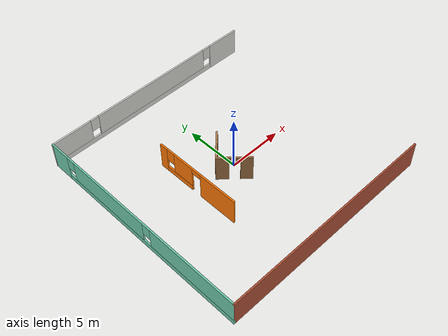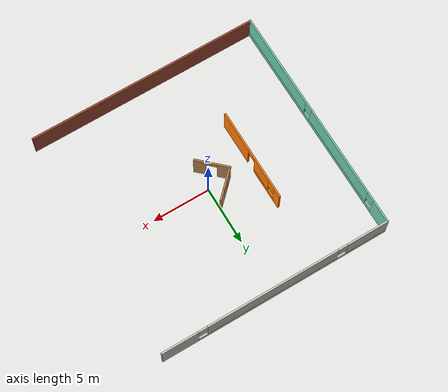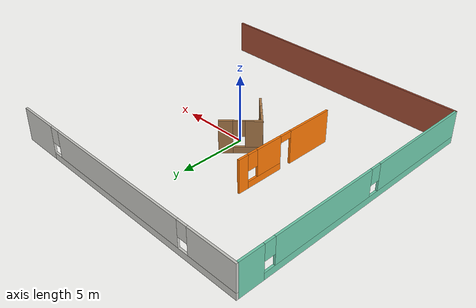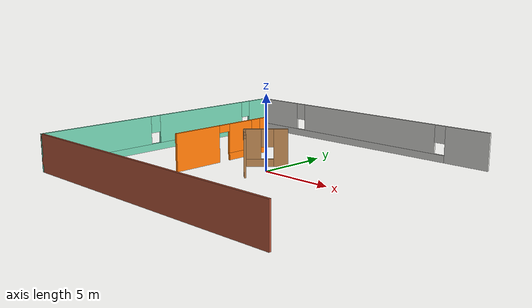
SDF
<sdf version="1.6">
 <model name="walls">
  <link name="Wall_44">
   <pose>0 -10 0 0 -0 0</pose>
   <visual name="Wall_44_Visual">
    <pose>0 0 1.25 0 -0 0</pose>
    <geometry><box><size>20.15 0.15 2.5</size></box></geometry>
    <material>
     <script><uri>file://media/materials/scripts/gazebo.material</uri><name>Gazebo/Bricks</name></script>
     <ambient>0.760784 0.662745 0.627451 1</ambient>
     <shader type="pixel"/>
     <diffuse>1 1 1 1</diffuse>
     <specular>0.2 0.2 0.2 1</specular>
     <emissive>0 0 0 1</emissive>
    </material>
    <meta><layer>0</layer></meta>
   </visual>
   <collision name="Wall_44_Collision">
    <pose>0 0 1.25 0 -0 0</pose>
    <geometry><box><size>20.15 0.15 2.5</size></box></geometry>
    <surface>
     <friction>
      <ode><mu>1</mu><mu2>1</mu2><fdir1>0 0 0</fdir1><slip1>0</slip1><slip2>0</slip2></ode>
      <torsional>
       <coefficient>1</coefficient>
       <patch_radius>0</patch_radius>
       <surface_radius>0</surface_radius>
       <use_patch_radius>1</use_patch_radius>
       <ode><slip>0</slip></ode>
      </torsional>
     </friction>
     <bounce><restitution_coefficient>0</restitution_coefficient><threshold>1e+06</threshold></bounce>
     <contact>
      <collide_without_contact>0</collide_without_contact>
      <collide_without_contact_bitmask>1</collide_without_contact_bitmask>
      <collide_bitmask>1</collide_bitmask>
      <ode>
       <soft_cfm>0</soft_cfm>
       <soft_erp>0.2</soft_erp>
       <kp>1e+13</kp>
       <kd>1</kd>
       <max_vel>0.01</max_vel>
       <min_depth>0</min_depth>
      </ode>
      <bullet>
       <split_impulse>1</split_impulse>
       <split_impulse_penetration_threshold>-0.01</split_impulse_penetration_threshold>
       <soft_cfm>0</soft_cfm>
       <soft_erp>0.2</soft_erp>
       <kp>1e+13</kp>
       <kd>1</kd>
      </bullet>
     </contact>
    </surface>
   </collision>
  </link>
  <link name="Wall_46">
   <pose>0 10 0 0 -0 3.14159</pose>
   <visual name="Wall_46_Visual_0">
    <pose>-8.48027 0 1.25 0 -0 0</pose>
    <geometry><box><size>3.18945 0.15 2.5</size></box></geometry>
    <material>
     <script><uri>file://media/materials/scripts/gazebo.material</uri><name>Gazebo/CeilingTiled</name></script>
     <ambient>0.333333 0 1 1</ambient>
     <shader type="pixel"/>
     <diffuse>1 1 1 1</diffuse>
     <specular>0 0 0 1</specular>
     <emissive>0 0 0 1</emissive>
    </material>
    <meta><layer>0</layer></meta>
   </visual>
   <visual name="Wall_46_Visual_1">
    <pose>1.59473 0 0.25 0 -0 0</pose>
    <geometry><box><size>16.9605 0.15 0.5</size></box></geometry>
    <material>
     <script><uri>file://media/materials/scripts/gazebo.material</uri><name>Gazebo/CeilingTiled</name></script>
     <ambient>0.333333 0 1 1</ambient>
     <shader type="pixel"/>
     <diffuse>1 1 1 1</diffuse>
     <specular>0 0 0 1</specular>
     <emissive>0 0 0 1</emissive>
    </material>
    <meta><layer>0</layer></meta>
   </visual>
   <visual name="Wall_46_Visual_2">
    <pose>-0.261101 0 1.5 0 -0 0</pose>
    <geometry><box><size>11.6489 0.15 2</size></box></geometry>
    <material>
     <script><uri>file://media/materials/scripts/gazebo.material</uri><name>Gazebo/CeilingTiled</name></script>
     <ambient>0.333333 0 1 1</ambient>
     <shader type="pixel"/>
     <diffuse>1 1 1 1</diffuse>
     <specular>0 0 0 1</specular>
     <emissive>0 0 0 1</emissive>
    </material>
    <meta><layer>0</layer></meta>
   </visual>
   <visual name="Wall_46_Visual_3">
    <pose>8.21917 0 1.5 0 -0 0</pose>
    <geometry><box><size>3.71165 0.15 2</size></box></geometry>
    <material>
     <script><uri>file://media/materials/scripts/gazebo.material</uri><name>Gazebo/CeilingTiled</name></script>
     <ambient>0.333333 0 1 1</ambient>
     <shader type="pixel"/>
     <diffuse>1 1 1 1</diffuse>
     <specular>0 0 0 1</specular>
     <emissive>0 0 0 1</emissive>
    </material>
    <meta><layer>0</layer></meta>
   </visual>
   <visual name="Wall_46_Visual_4">
    <pose>-6.48555 0 1.9 0 -0 0</pose>
    <geometry><box><size>0.8 0.15 1.2</size></box></geometry>
    <material>
     <script><uri>file://media/materials/scripts/gazebo.material</uri><name>Gazebo/CeilingTiled</name></script>
     <ambient>0.333333 0 1 1</ambient>
     <shader type="pixel"/>
     <diffuse>1 1 1 1</diffuse>
     <specular>0 0 0 1</specular>
     <emissive>0 0 0 1</emissive>
    </material>
    <meta><layer>0</layer></meta>
   </visual>
   <visual name="Wall_46_Visual_5">
    <pose>5.96335 0 1.9 0 -0 0</pose>
    <geometry><box><size>0.8 0.15 1.2</size></box></geometry>
    <material>
     <script><uri>file://media/materials/scripts/gazebo.material</uri><name>Gazebo/CeilingTiled</name></script>
     <ambient>0.333333 0 1 1</ambient>
     <shader type="pixel"/>
     <diffuse>1 1 1 1</diffuse>
     <specular>0 0 0 1</specular>
     <emissive>0 0 0 1</emissive>
    </material>
    <meta><layer>0</layer></meta>
   </visual>
   <collision name="Wall_46_Collision_0">
    <pose>-8.48027 0 1.25 0 -0 0</pose>
    <geometry><box><size>3.18945 0.15 2.5</size></box></geometry>
    <surface>
     <friction>
      <ode><mu>1</mu><mu2>1</mu2><fdir1>0 0 0</fdir1><slip1>0</slip1><slip2>0</slip2></ode>
      <torsional>
       <coefficient>1</coefficient>
       <patch_radius>0</patch_radius>
       <surface_radius>0</surface_radius>
       <use_patch_radius>1</use_patch_radius>
       <ode><slip>0</slip></ode>
      </torsional>
     </friction>
     <bounce><restitution_coefficient>0</restitution_coefficient><threshold>1e+06</threshold></bounce>
     <contact>
      <collide_without_contact>0</collide_without_contact>
      <collide_without_contact_bitmask>1</collide_without_contact_bitmask>
      <collide_bitmask>1</collide_bitmask>
      <ode>
       <soft_cfm>0</soft_cfm>
       <soft_erp>0.2</soft_erp>
       <kp>1e+13</kp>
       <kd>1</kd>
       <max_vel>0.01</max_vel>
       <min_depth>0</min_depth>
      </ode>
      <bullet>
       <split_impulse>1</split_impulse>
       <split_impulse_penetration_threshold>-0.01</split_impulse_penetration_threshold>
       <soft_cfm>0</soft_cfm>
       <soft_erp>0.2</soft_erp>
       <kp>1e+13</kp>
       <kd>1</kd>
      </bullet>
     </contact>
    </surface>
   </collision>
   <collision name="Wall_46_Collision_1">
    <pose>1.59473 0 0.25 0 -0 0</pose>
    <geometry><box><size>16.9605 0.15 0.5</size></box></geometry>
    <surface>
     <friction>
      <ode><mu>1</mu><mu2>1</mu2><fdir1>0 0 0</fdir1><slip1>0</slip1><slip2>0</slip2></ode>
      <torsional>
       <coefficient>1</coefficient>
       <patch_radius>0</patch_radius>
       <surface_radius>0</surface_radius>
       <use_patch_radius>1</use_patch_radius>
       <ode><slip>0</slip></ode>
      </torsional>
     </friction>
     <bounce><restitution_coefficient>0</restitution_coefficient><threshold>1e+06</threshold></bounce>
     <contact>
      <collide_without_contact>0</collide_without_contact>
      <collide_without_contact_bitmask>1</collide_without_contact_bitmask>
      <collide_bitmask>1</collide_bitmask>
      <ode>
       <soft_cfm>0</soft_cfm>
       <soft_erp>0.2</soft_erp>
       <kp>1e+13</kp>
       <kd>1</kd>
       <max_vel>0.01</max_vel>
       <min_depth>0</min_depth>
      </ode>
      <bullet>
       <split_impulse>1</split_impulse>
       <split_impulse_penetration_threshold>-0.01</split_impulse_penetration_threshold>
       <soft_cfm>0</soft_cfm>
       <soft_erp>0.2</soft_erp>
       <kp>1e+13</kp>
       <kd>1</kd>
      </bullet>
     </contact>
    </surface>
   </collision>
   <collision name="Wall_46_Collision_2">
    <pose>-0.261101 0 1.5 0 -0 0</pose>
    <geometry><box><size>11.6489 0.15 2</size></box></geometry>
    <surface>
     <friction>
      <ode><mu>1</mu><mu2>1</mu2><fdir1>0 0 0</fdir1><slip1>0</slip1><slip2>0</slip2></ode>
      <torsional>
       <coefficient>1</coefficient>
       <patch_radius>0</patch_radius>
       <surface_radius>0</surface_radius>
       <use_patch_radius>1</use_patch_radius>
       <ode><slip>0</slip></ode>
      </torsional>
     </friction>
     <bounce><restitution_coefficient>0</restitution_coefficient><threshold>1e+06</threshold></bounce>
     <contact>
      <collide_without_contact>0</collide_without_contact>
      <collide_without_contact_bitmask>1</collide_without_contact_bitmask>
      <collide_bitmask>1</collide_bitmask>
      <ode>
       <soft_cfm>0</soft_cfm>
       <soft_erp>0.2</soft_erp>
       <kp>1e+13</kp>
       <kd>1</kd>
       <max_vel>0.01</max_vel>
       <min_depth>0</min_depth>
      </ode>
      <bullet>
       <split_impulse>1</split_impulse>
       <split_impulse_penetration_threshold>-0.01</split_impulse_penetration_threshold>
       <soft_cfm>0</soft_cfm>
       <soft_erp>0.2</soft_erp>
       <kp>1e+13</kp>
       <kd>1</kd>
      </bullet>
     </contact>
    </surface>
   </collision>
   <collision name="Wall_46_Collision_3">
    <pose>8.21917 0 1.5 0 -0 0</pose>
    <geometry><box><size>3.71165 0.15 2</size></box></geometry>
    <surface>
     <friction>
      <ode><mu>1</mu><mu2>1</mu2><fdir1>0 0 0</fdir1><slip1>0</slip1><slip2>0</slip2></ode>
      <torsional>
       <coefficient>1</coefficient>
       <patch_radius>0</patch_radius>
       <surface_radius>0</surface_radius>
       <use_patch_radius>1</use_patch_radius>
       <ode><slip>0</slip></ode>
      </torsional>
     </friction>
     <bounce><restitution_coefficient>0</restitution_coefficient><threshold>1e+06</threshold></bounce>
     <contact>
      <collide_without_contact>0</collide_without_contact>
      <collide_without_contact_bitmask>1</collide_without_contact_bitmask>
      <collide_bitmask>1</collide_bitmask>
      <ode>
       <soft_cfm>0</soft_cfm>
       <soft_erp>0.2</soft_erp>
       <kp>1e+13</kp>
       <kd>1</kd>
       <max_vel>0.01</max_vel>
       <min_depth>0</min_depth>
      </ode>
      <bullet>
       <split_impulse>1</split_impulse>
       <split_impulse_penetration_threshold>-0.01</split_impulse_penetration_threshold>
       <soft_cfm>0</soft_cfm>
       <soft_erp>0.2</soft_erp>
       <kp>1e+13</kp>
       <kd>1</kd>
      </bullet>
     </contact>
    </surface>
   </collision>
   <collision name="Wall_46_Collision_4">
    <pose>-6.48555 0 1.9 0 -0 0</pose>
    <geometry><box><size>0.8 0.15 1.2</size></box></geometry>
    <surface>
     <friction>
      <ode><mu>1</mu><mu2>1</mu2><fdir1>0 0 0</fdir1><slip1>0</slip1><slip2>0</slip2></ode>
      <torsional>
       <coefficient>1</coefficient>
       <patch_radius>0</patch_radius>
       <surface_radius>0</surface_radius>
       <use_patch_radius>1</use_patch_radius>
       <ode><slip>0</slip></ode>
      </torsional>
     </friction>
     <bounce><restitution_coefficient>0</restitution_coefficient><threshold>1e+06</threshold></bounce>
     <contact>
      <collide_without_contact>0</collide_without_contact>
      <collide_without_contact_bitmask>1</collide_without_contact_bitmask>
      <collide_bitmask>1</collide_bitmask>
      <ode>
       <soft_cfm>0</soft_cfm>
       <soft_erp>0.2</soft_erp>
       <kp>1e+13</kp>
       <kd>1</kd>
       <max_vel>0.01</max_vel>
       <min_depth>0</min_depth>
      </ode>
      <bullet>
       <split_impulse>1</split_impulse>
       <split_impulse_penetration_threshold>-0.01</split_impulse_penetration_threshold>
       <soft_cfm>0</soft_cfm>
       <soft_erp>0.2</soft_erp>
       <kp>1e+13</kp>
       <kd>1</kd>
      </bullet>
     </contact>
    </surface>
   </collision>
   <collision name="Wall_46_Collision_5">
    <pose>5.96335 0 1.9 0 -0 0</pose>
    <geometry><box><size>0.8 0.15 1.2</size></box></geometry>
    <surface>
     <friction>
      <ode><mu>1</mu><mu2>1</mu2><fdir1>0 0 0</fdir1><slip1>0</slip1><slip2>0</slip2></ode>
      <torsional>
       <coefficient>1</coefficient>
       <patch_radius>0</patch_radius>
       <surface_radius>0</surface_radius>
       <use_patch_radius>1</use_patch_radius>
       <ode><slip>0</slip></ode>
      </torsional>
     </friction>
     <bounce><restitution_coefficient>0</restitution_coefficient><threshold>1e+06</threshold></bounce>
     <contact>
      <collide_without_contact>0</collide_without_contact>
      <collide_without_contact_bitmask>1</collide_without_contact_bitmask>
      <collide_bitmask>1</collide_bitmask>
      <ode>
       <soft_cfm>0</soft_cfm>
       <soft_erp>0.2</soft_erp>
       <kp>1e+13</kp>
       <kd>1</kd>
       <max_vel>0.01</max_vel>
       <min_depth>0</min_depth>
      </ode>
      <bullet>
       <split_impulse>1</split_impulse>
       <split_impulse_penetration_threshold>-0.01</split_impulse_penetration_threshold>
       <soft_cfm>0</soft_cfm>
       <soft_erp>0.2</soft_erp>
       <kp>1e+13</kp>
       <kd>1</kd>
      </bullet>
     </contact>
    </surface>
   </collision>
  </link>
  <link name="Wall_47">
   <pose>-10 0 0 0 0 -1.5708</pose>
   <visual name="Wall_47_Visual_0">
    <pose>-9.08483 0 1.25 0 -0 0</pose>
    <geometry><box><size>1.98033 0.15 2.5</size></box></geometry>
    <material>
     <script><uri>file://media/materials/scripts/gazebo.material</uri><name>Gazebo/Grey</name></script>
     <ambient>0.435294 0.796078 0.67451 1</ambient>
     <shader type="pixel"/>
     <diffuse>0.7 0.7 0.7 1</diffuse>
     <specular>0.01 0.01 0.01 1</specular>
     <emissive>0 0 0 1</emissive>
    </material>
    <meta><layer>0</layer></meta>
   </visual>
   <visual name="Wall_47_Visual_1">
    <pose>0.990168 0 0.25 0 -0 0</pose>
    <geometry><box><size>18.1697 0.15 0.5</size></box></geometry>
    <material>
     <script><uri>file://media/materials/scripts/gazebo.material</uri><name>Gazebo/Grey</name></script>
     <ambient>0.435294 0.796078 0.67451 1</ambient>
     <shader type="pixel"/>
     <diffuse>0.7 0.7 0.7 1</diffuse>
     <specular>0.01 0.01 0.01 1</specular>
     <emissive>0 0 0 1</emissive>
    </material>
    <meta><layer>0</layer></meta>
   </visual>
   <visual name="Wall_47_Visual_2">
    <pose>-3.25243 0 1.5 0 -0 0</pose>
    <geometry><box><size>8.08447 0.15 2</size></box></geometry>
    <material>
     <script><uri>file://media/materials/scripts/gazebo.material</uri><name>Gazebo/Grey</name></script>
     <ambient>0.435294 0.796078 0.67451 1</ambient>
     <shader type="pixel"/>
     <diffuse>0.7 0.7 0.7 1</diffuse>
     <specular>0.01 0.01 0.01 1</specular>
     <emissive>0 0 0 1</emissive>
    </material>
    <meta><layer>0</layer></meta>
   </visual>
   <visual name="Wall_47_Visual_3">
    <pose>5.8324 0 1.5 0 -0 0</pose>
    <geometry><box><size>8.4852 0.15 2</size></box></geometry>
    <material>
     <script><uri>file://media/materials/scripts/gazebo.material</uri><name>Gazebo/Grey</name></script>
     <ambient>0.435294 0.796078 0.67451 1</ambient>
     <shader type="pixel"/>
     <diffuse>0.7 0.7 0.7 1</diffuse>
     <specular>0.01 0.01 0.01 1</specular>
     <emissive>0 0 0 1</emissive>
    </material>
    <meta><layer>0</layer></meta>
   </visual>
   <visual name="Wall_47_Visual_4">
    <pose>-7.69466 0 1.9 0 -0 0</pose>
    <geometry><box><size>0.8 0.15 1.2</size></box></geometry>
    <material>
     <script><uri>file://media/materials/scripts/gazebo.material</uri><name>Gazebo/Grey</name></script>
     <ambient>0.435294 0.796078 0.67451 1</ambient>
     <shader type="pixel"/>
     <diffuse>0.7 0.7 0.7 1</diffuse>
     <specular>0.01 0.01 0.01 1</specular>
     <emissive>0 0 0 1</emissive>
    </material>
    <meta><layer>0</layer></meta>
   </visual>
   <visual name="Wall_47_Visual_5">
    <pose>1.1898 0 1.9 0 -0 0</pose>
    <geometry><box><size>0.8 0.15 1.2</size></box></geometry>
    <material>
     <script><uri>file://media/materials/scripts/gazebo.material</uri><name>Gazebo/Grey</name></script>
     <ambient>0.435294 0.796078 0.67451 1</ambient>
     <shader type="pixel"/>
     <diffuse>0.7 0.7 0.7 1</diffuse>
     <specular>0.01 0.01 0.01 1</specular>
     <emissive>0 0 0 1</emissive>
    </material>
    <meta><layer>0</layer></meta>
   </visual>
   <collision name="Wall_47_Collision_0">
    <pose>-9.08483 0 1.25 0 -0 0</pose>
    <geometry><box><size>1.98033 0.15 2.5</size></box></geometry>
    <surface>
     <friction>
      <ode><mu>1</mu><mu2>1</mu2><fdir1>0 0 0</fdir1><slip1>0</slip1><slip2>0</slip2></ode>
      <torsional>
       <coefficient>1</coefficient>
       <patch_radius>0</patch_radius>
       <surface_radius>0</surface_radius>
       <use_patch_radius>1</use_patch_radius>
       <ode><slip>0</slip></ode>
      </torsional>
     </friction>
     <bounce><restitution_coefficient>0</restitution_coefficient><threshold>1e+06</threshold></bounce>
     <contact>
      <collide_without_contact>0</collide_without_contact>
      <collide_without_contact_bitmask>1</collide_without_contact_bitmask>
      <collide_bitmask>1</collide_bitmask>
      <ode>
       <soft_cfm>0</soft_cfm>
       <soft_erp>0.2</soft_erp>
       <kp>1e+13</kp>
       <kd>1</kd>
       <max_vel>0.01</max_vel>
       <min_depth>0</min_depth>
      </ode>
      <bullet>
       <split_impulse>1</split_impulse>
       <split_impulse_penetration_threshold>-0.01</split_impulse_penetration_threshold>
       <soft_cfm>0</soft_cfm>
       <soft_erp>0.2</soft_erp>
       <kp>1e+13</kp>
       <kd>1</kd>
      </bullet>
     </contact>
    </surface>
   </collision>
   <collision name="Wall_47_Collision_1">
    <pose>0.990168 0 0.25 0 -0 0</pose>
    <geometry><box><size>18.1697 0.15 0.5</size></box></geometry>
    <surface>
     <friction>
      <ode><mu>1</mu><mu2>1</mu2><fdir1>0 0 0</fdir1><slip1>0</slip1><slip2>0</slip2></ode>
      <torsional>
       <coefficient>1</coefficient>
       <patch_radius>0</patch_radius>
       <surface_radius>0</surface_radius>
       <use_patch_radius>1</use_patch_radius>
       <ode><slip>0</slip></ode>
      </torsional>
     </friction>
     <bounce><restitution_coefficient>0</restitution_coefficient><threshold>1e+06</threshold></bounce>
     <contact>
      <collide_without_contact>0</collide_without_contact>
      <collide_without_contact_bitmask>1</collide_without_contact_bitmask>
      <collide_bitmask>1</collide_bitmask>
      <ode>
       <soft_cfm>0</soft_cfm>
       <soft_erp>0.2</soft_erp>
       <kp>1e+13</kp>
       <kd>1</kd>
       <max_vel>0.01</max_vel>
       <min_depth>0</min_depth>
      </ode>
      <bullet>
       <split_impulse>1</split_impulse>
       <split_impulse_penetration_threshold>-0.01</split_impulse_penetration_threshold>
       <soft_cfm>0</soft_cfm>
       <soft_erp>0.2</soft_erp>
       <kp>1e+13</kp>
       <kd>1</kd>
      </bullet>
     </contact>
    </surface>
   </collision>
   <collision name="Wall_47_Collision_2">
    <pose>-3.25243 0 1.5 0 -0 0</pose>
    <geometry><box><size>8.08447 0.15 2</size></box></geometry>
    <surface>
     <friction>
      <ode><mu>1</mu><mu2>1</mu2><fdir1>0 0 0</fdir1><slip1>0</slip1><slip2>0</slip2></ode>
      <torsional>
       <coefficient>1</coefficient>
       <patch_radius>0</patch_radius>
       <surface_radius>0</surface_radius>
       <use_patch_radius>1</use_patch_radius>
       <ode><slip>0</slip></ode>
      </torsional>
     </friction>
     <bounce><restitution_coefficient>0</restitution_coefficient><threshold>1e+06</threshold></bounce>
     <contact>
      <collide_without_contact>0</collide_without_contact>
      <collide_without_contact_bitmask>1</collide_without_contact_bitmask>
      <collide_bitmask>1</collide_bitmask>
      <ode>
       <soft_cfm>0</soft_cfm>
       <soft_erp>0.2</soft_erp>
       <kp>1e+13</kp>
       <kd>1</kd>
       <max_vel>0.01</max_vel>
       <min_depth>0</min_depth>
      </ode>
      <bullet>
       <split_impulse>1</split_impulse>
       <split_impulse_penetration_threshold>-0.01</split_impulse_penetration_threshold>
       <soft_cfm>0</soft_cfm>
       <soft_erp>0.2</soft_erp>
       <kp>1e+13</kp>
       <kd>1</kd>
      </bullet>
     </contact>
    </surface>
   </collision>
   <collision name="Wall_47_Collision_3">
    <pose>5.8324 0 1.5 0 -0 0</pose>
    <geometry><box><size>8.4852 0.15 2</size></box></geometry>
    <surface>
     <friction>
      <ode><mu>1</mu><mu2>1</mu2><fdir1>0 0 0</fdir1><slip1>0</slip1><slip2>0</slip2></ode>
      <torsional>
       <coefficient>1</coefficient>
       <patch_radius>0</patch_radius>
       <surface_radius>0</surface_radius>
       <use_patch_radius>1</use_patch_radius>
       <ode><slip>0</slip></ode>
      </torsional>
     </friction>
     <bounce><restitution_coefficient>0</restitution_coefficient><threshold>1e+06</threshold></bounce>
     <contact>
      <collide_without_contact>0</collide_without_contact>
      <collide_without_contact_bitmask>1</collide_without_contact_bitmask>
      <collide_bitmask>1</collide_bitmask>
      <ode>
       <soft_cfm>0</soft_cfm>
       <soft_erp>0.2</soft_erp>
       <kp>1e+13</kp>
       <kd>1</kd>
       <max_vel>0.01</max_vel>
       <min_depth>0</min_depth>
      </ode>
      <bullet>
       <split_impulse>1</split_impulse>
       <split_impulse_penetration_threshold>-0.01</split_impulse_penetration_threshold>
       <soft_cfm>0</soft_cfm>
       <soft_erp>0.2</soft_erp>
       <kp>1e+13</kp>
       <kd>1</kd>
      </bullet>
     </contact>
    </surface>
   </collision>
   <collision name="Wall_47_Collision_4">
    <pose>-7.69466 0 1.9 0 -0 0</pose>
    <geometry><box><size>0.8 0.15 1.2</size></box></geometry>
    <surface>
     <friction>
      <ode><mu>1</mu><mu2>1</mu2><fdir1>0 0 0</fdir1><slip1>0</slip1><slip2>0</slip2></ode>
      <torsional>
       <coefficient>1</coefficient>
       <patch_radius>0</patch_radius>
       <surface_radius>0</surface_radius>
       <use_patch_radius>1</use_patch_radius>
       <ode><slip>0</slip></ode>
      </torsional>
     </friction>
     <bounce><restitution_coefficient>0</restitution_coefficient><threshold>1e+06</threshold></bounce>
     <contact>
      <collide_without_contact>0</collide_without_contact>
      <collide_without_contact_bitmask>1</collide_without_contact_bitmask>
      <collide_bitmask>1</collide_bitmask>
      <ode>
       <soft_cfm>0</soft_cfm>
       <soft_erp>0.2</soft_erp>
       <kp>1e+13</kp>
       <kd>1</kd>
       <max_vel>0.01</max_vel>
       <min_depth>0</min_depth>
      </ode>
      <bullet>
       <split_impulse>1</split_impulse>
       <split_impulse_penetration_threshold>-0.01</split_impulse_penetration_threshold>
       <soft_cfm>0</soft_cfm>
       <soft_erp>0.2</soft_erp>
       <kp>1e+13</kp>
       <kd>1</kd>
      </bullet>
     </contact>
    </surface>
   </collision>
   <collision name="Wall_47_Collision_5">
    <pose>1.1898 0 1.9 0 -0 0</pose>
    <geometry><box><size>0.8 0.15 1.2</size></box></geometry>
    <surface>
     <friction>
      <ode><mu>1</mu><mu2>1</mu2><fdir1>0 0 0</fdir1><slip1>0</slip1><slip2>0</slip2></ode>
      <torsional>
       <coefficient>1</coefficient>
       <patch_radius>0</patch_radius>
       <surface_radius>0</surface_radius>
       <use_patch_radius>1</use_patch_radius>
       <ode><slip>0</slip></ode>
      </torsional>
     </friction>
     <bounce><restitution_coefficient>0</restitution_coefficient><threshold>1e+06</threshold></bounce>
     <contact>
      <collide_without_contact>0</collide_without_contact>
      <collide_without_contact_bitmask>1</collide_without_contact_bitmask>
      <collide_bitmask>1</collide_bitmask>
      <ode>
       <soft_cfm>0</soft_cfm>
       <soft_erp>0.2</soft_erp>
       <kp>1e+13</kp>
       <kd>1</kd>
       <max_vel>0.01</max_vel>
       <min_depth>0</min_depth>
      </ode>
      <bullet>
       <split_impulse>1</split_impulse>
       <split_impulse_penetration_threshold>-0.01</split_impulse_penetration_threshold>
       <soft_cfm>0</soft_cfm>
       <soft_erp>0.2</soft_erp>
       <kp>1e+13</kp>
       <kd>1</kd>
      </bullet>
     </contact>
    </surface>
   </collision>
  </link>
  <link name="Wall_49">
   <pose>-4 0 0 0 0 -1.5708</pose>
   <visual name="Wall_49_Visual_0">
    <pose>-3.69081 0 1.25 0 -0 0</pose>
    <geometry><box><size>0.768371 0.15 2.5</size></box></geometry>
    <material>
     <script><uri>file://media/materials/scripts/gazebo.material</uri><name>Gazebo/Grey</name></script>
     <ambient>0.996078 0.47451 0.0196078 1</ambient>
     <shader type="pixel"/>
     <diffuse>0.7 0.7 0.7 1</diffuse>
     <specular>0.01 0.01 0.01 1</specular>
     <emissive>0 0 0 1</emissive>
    </material>
    <meta><layer>0</layer></meta>
   </visual>
   <visual name="Wall_49_Visual_1">
    <pose>2.2625 0 1.25 0 -0 0</pose>
    <geometry><box><size>3.625 0.15 2.5</size></box></geometry>
    <material>
     <script><uri>file://media/materials/scripts/gazebo.material</uri><name>Gazebo/Grey</name></script>
     <ambient>0.996078 0.47451 0.0196078 1</ambient>
     <shader type="pixel"/>
     <diffuse>0.7 0.7 0.7 1</diffuse>
     <specular>0.01 0.01 0.01 1</specular>
     <emissive>0 0 0 1</emissive>
    </material>
    <meta><layer>0</layer></meta>
   </visual>
   <visual name="Wall_49_Visual_2">
    <pose>-1.87831 0 0.25 0 -0 0</pose>
    <geometry><box><size>2.85663 0.15 0.5</size></box></geometry>
    <material>
     <script><uri>file://media/materials/scripts/gazebo.material</uri><name>Gazebo/Grey</name></script>
     <ambient>0.996078 0.47451 0.0196078 1</ambient>
     <shader type="pixel"/>
     <diffuse>0.7 0.7 0.7 1</diffuse>
     <specular>0.01 0.01 0.01 1</specular>
     <emissive>0 0 0 1</emissive>
    </material>
    <meta><layer>0</layer></meta>
   </visual>
   <visual name="Wall_49_Visual_3">
    <pose>-1.47831 0 1.5 0 -0 0</pose>
    <geometry><box><size>2.05663 0.15 2</size></box></geometry>
    <material>
     <script><uri>file://media/materials/scripts/gazebo.material</uri><name>Gazebo/Grey</name></script>
     <ambient>0.996078 0.47451 0.0196078 1</ambient>
     <shader type="pixel"/>
     <diffuse>0.7 0.7 0.7 1</diffuse>
     <specular>0.01 0.01 0.01 1</specular>
     <emissive>0 0 0 1</emissive>
    </material>
    <meta><layer>0</layer></meta>
   </visual>
   <visual name="Wall_49_Visual_4">
    <pose>-2.90663 0 1.9 0 -0 0</pose>
    <geometry><box><size>0.8 0.15 1.2</size></box></geometry>
    <material>
     <script><uri>file://media/materials/scripts/gazebo.material</uri><name>Gazebo/Grey</name></script>
     <ambient>0.996078 0.47451 0.0196078 1</ambient>
     <shader type="pixel"/>
     <diffuse>0.7 0.7 0.7 1</diffuse>
     <specular>0.01 0.01 0.01 1</specular>
     <emissive>0 0 0 1</emissive>
    </material>
    <meta><layer>0</layer></meta>
   </visual>
   <visual name="Wall_49_Visual_5">
    <pose>0 0 2.25 0 -0 0</pose>
    <geometry><box><size>0.9 0.15 0.5</size></box></geometry>
    <material>
     <script><uri>file://media/materials/scripts/gazebo.material</uri><name>Gazebo/Grey</name></script>
     <ambient>0.996078 0.47451 0.0196078 1</ambient>
     <shader type="pixel"/>
     <diffuse>0.7 0.7 0.7 1</diffuse>
     <specular>0.01 0.01 0.01 1</specular>
     <emissive>0 0 0 1</emissive>
    </material>
    <meta><layer>0</layer></meta>
   </visual>
   <collision name="Wall_49_Collision_0">
    <pose>-3.69081 0 1.25 0 -0 0</pose>
    <geometry><box><size>0.768371 0.15 2.5</size></box></geometry>
    <surface>
     <friction>
      <ode><mu>1</mu><mu2>1</mu2><fdir1>0 0 0</fdir1><slip1>0</slip1><slip2>0</slip2></ode>
      <torsional>
       <coefficient>1</coefficient>
       <patch_radius>0</patch_radius>
       <surface_radius>0</surface_radius>
       <use_patch_radius>1</use_patch_radius>
       <ode><slip>0</slip></ode>
      </torsional>
     </friction>
     <bounce><restitution_coefficient>0</restitution_coefficient><threshold>1e+06</threshold></bounce>
     <contact>
      <collide_without_contact>0</collide_without_contact>
      <collide_without_contact_bitmask>1</collide_without_contact_bitmask>
      <collide_bitmask>1</collide_bitmask>
      <ode>
       <soft_cfm>0</soft_cfm>
       <soft_erp>0.2</soft_erp>
       <kp>1e+13</kp>
       <kd>1</kd>
       <max_vel>0.01</max_vel>
       <min_depth>0</min_depth>
      </ode>
      <bullet>
       <split_impulse>1</split_impulse>
       <split_impulse_penetration_threshold>-0.01</split_impulse_penetration_threshold>
       <soft_cfm>0</soft_cfm>
       <soft_erp>0.2</soft_erp>
       <kp>1e+13</kp>
       <kd>1</kd>
      </bullet>
     </contact>
    </surface>
   </collision>
   <collision name="Wall_49_Collision_1">
    <pose>2.2625 0 1.25 0 -0 0</pose>
    <geometry><box><size>3.625 0.15 2.5</size></box></geometry>
    <surface>
     <friction>
      <ode><mu>1</mu><mu2>1</mu2><fdir1>0 0 0</fdir1><slip1>0</slip1><slip2>0</slip2></ode>
      <torsional>
       <coefficient>1</coefficient>
       <patch_radius>0</patch_radius>
       <surface_radius>0</surface_radius>
       <use_patch_radius>1</use_patch_radius>
       <ode><slip>0</slip></ode>
      </torsional>
     </friction>
     <bounce><restitution_coefficient>0</restitution_coefficient><threshold>1e+06</threshold></bounce>
     <contact>
      <collide_without_contact>0</collide_without_contact>
      <collide_without_contact_bitmask>1</collide_without_contact_bitmask>
      <collide_bitmask>1</collide_bitmask>
      <ode>
       <soft_cfm>0</soft_cfm>
       <soft_erp>0.2</soft_erp>
       <kp>1e+13</kp>
       <kd>1</kd>
       <max_vel>0.01</max_vel>
       <min_depth>0</min_depth>
      </ode>
      <bullet>
       <split_impulse>1</split_impulse>
       <split_impulse_penetration_threshold>-0.01</split_impulse_penetration_threshold>
       <soft_cfm>0</soft_cfm>
       <soft_erp>0.2</soft_erp>
       <kp>1e+13</kp>
       <kd>1</kd>
      </bullet>
     </contact>
    </surface>
   </collision>
   <collision name="Wall_49_Collision_2">
    <pose>-1.87831 0 0.25 0 -0 0</pose>
    <geometry><box><size>2.85663 0.15 0.5</size></box></geometry>
    <surface>
     <friction>
      <ode><mu>1</mu><mu2>1</mu2><fdir1>0 0 0</fdir1><slip1>0</slip1><slip2>0</slip2></ode>
      <torsional>
       <coefficient>1</coefficient>
       <patch_radius>0</patch_radius>
       <surface_radius>0</surface_radius>
       <use_patch_radius>1</use_patch_radius>
       <ode><slip>0</slip></ode>
      </torsional>
     </friction>
     <bounce><restitution_coefficient>0</restitution_coefficient><threshold>1e+06</threshold></bounce>
     <contact>
      <collide_without_contact>0</collide_without_contact>
      <collide_without_contact_bitmask>1</collide_without_contact_bitmask>
      <collide_bitmask>1</collide_bitmask>
      <ode>
       <soft_cfm>0</soft_cfm>
       <soft_erp>0.2</soft_erp>
       <kp>1e+13</kp>
       <kd>1</kd>
       <max_vel>0.01</max_vel>
       <min_depth>0</min_depth>
      </ode>
      <bullet>
       <split_impulse>1</split_impulse>
       <split_impulse_penetration_threshold>-0.01</split_impulse_penetration_threshold>
       <soft_cfm>0</soft_cfm>
       <soft_erp>0.2</soft_erp>
       <kp>1e+13</kp>
       <kd>1</kd>
      </bullet>
     </contact>
    </surface>
   </collision>
   <collision name="Wall_49_Collision_3">
    <pose>-1.47831 0 1.5 0 -0 0</pose>
    <geometry><box><size>2.05663 0.15 2</size></box></geometry>
    <surface>
     <friction>
      <ode><mu>1</mu><mu2>1</mu2><fdir1>0 0 0</fdir1><slip1>0</slip1><slip2>0</slip2></ode>
      <torsional>
       <coefficient>1</coefficient>
       <patch_radius>0</patch_radius>
       <surface_radius>0</surface_radius>
       <use_patch_radius>1</use_patch_radius>
       <ode><slip>0</slip></ode>
      </torsional>
     </friction>
     <bounce><restitution_coefficient>0</restitution_coefficient><threshold>1e+06</threshold></bounce>
     <contact>
      <collide_without_contact>0</collide_without_contact>
      <collide_without_contact_bitmask>1</collide_without_contact_bitmask>
      <collide_bitmask>1</collide_bitmask>
      <ode>
       <soft_cfm>0</soft_cfm>
       <soft_erp>0.2</soft_erp>
       <kp>1e+13</kp>
       <kd>1</kd>
       <max_vel>0.01</max_vel>
       <min_depth>0</min_depth>
      </ode>
      <bullet>
       <split_impulse>1</split_impulse>
       <split_impulse_penetration_threshold>-0.01</split_impulse_penetration_threshold>
       <soft_cfm>0</soft_cfm>
       <soft_erp>0.2</soft_erp>
       <kp>1e+13</kp>
       <kd>1</kd>
      </bullet>
     </contact>
    </surface>
   </collision>
   <collision name="Wall_49_Collision_4">
    <pose>-2.90663 0 1.9 0 -0 0</pose>
    <geometry><box><size>0.8 0.15 1.2</size></box></geometry>
    <surface>
     <friction>
      <ode><mu>1</mu><mu2>1</mu2><fdir1>0 0 0</fdir1><slip1>0</slip1><slip2>0</slip2></ode>
      <torsional>
       <coefficient>1</coefficient>
       <patch_radius>0</patch_radius>
       <surface_radius>0</surface_radius>
       <use_patch_radius>1</use_patch_radius>
       <ode><slip>0</slip></ode>
      </torsional>
     </friction>
     <bounce><restitution_coefficient>0</restitution_coefficient><threshold>1e+06</threshold></bounce>
     <contact>
      <collide_without_contact>0</collide_without_contact>
      <collide_without_contact_bitmask>1</collide_without_contact_bitmask>
      <collide_bitmask>1</collide_bitmask>
      <ode>
       <soft_cfm>0</soft_cfm>
       <soft_erp>0.2</soft_erp>
       <kp>1e+13</kp>
       <kd>1</kd>
       <max_vel>0.01</max_vel>
       <min_depth>0</min_depth>
      </ode>
      <bullet>
       <split_impulse>1</split_impulse>
       <split_impulse_penetration_threshold>-0.01</split_impulse_penetration_threshold>
       <soft_cfm>0</soft_cfm>
       <soft_erp>0.2</soft_erp>
       <kp>1e+13</kp>
       <kd>1</kd>
      </bullet>
     </contact>
    </surface>
   </collision>
   <collision name="Wall_49_Collision_5">
    <pose>0 0 2.25 0 -0 0</pose>
    <geometry><box><size>0.9 0.15 0.5</size></box></geometry>
    <surface>
     <friction>
      <ode><mu>1</mu><mu2>1</mu2><fdir1>0 0 0</fdir1><slip1>0</slip1><slip2>0</slip2></ode>
      <torsional>
       <coefficient>1</coefficient>
       <patch_radius>0</patch_radius>
       <surface_radius>0</surface_radius>
       <use_patch_radius>1</use_patch_radius>
       <ode><slip>0</slip></ode>
      </torsional>
     </friction>
     <bounce><restitution_coefficient>0</restitution_coefficient><threshold>1e+06</threshold></bounce>
     <contact>
      <collide_without_contact>0</collide_without_contact>
      <collide_without_contact_bitmask>1</collide_without_contact_bitmask>
      <collide_bitmask>1</collide_bitmask>
      <ode>
       <soft_cfm>0</soft_cfm>
       <soft_erp>0.2</soft_erp>
       <kp>1e+13</kp>
       <kd>1</kd>
       <max_vel>0.01</max_vel>
       <min_depth>0</min_depth>
      </ode>
      <bullet>
       <split_impulse>1</split_impulse>
       <split_impulse_penetration_threshold>-0.01</split_impulse_penetration_threshold>
       <soft_cfm>0</soft_cfm>
       <soft_erp>0.2</soft_erp>
       <kp>1e+13</kp>
       <kd>1</kd>
      </bullet>
     </contact>
    </surface>
   </collision>
  </link>
  <link name="Wall_58">
   <pose>-0.981304 0.947415 0 0 0 -2.36683</pose>
   <visual name="Wall_58_Visual_0">
    <pose>-0.975073 0 1.25 0 -0 0</pose>
    <geometry><box><size>0.954837 0.15 2.5</size></box></geometry>
    <material>
     <script><uri>file://media/materials/scripts/gazebo.material</uri><name>Gazebo/Wood</name></script>
     <ambient>0.333333 0 1 1</ambient>
     <shader type="pixel"/>
     <diffuse>1 1 1 1</diffuse>
     <specular>0.2 0.2 0.2 1</specular>
     <emissive>0 0 0 1</emissive>
    </material>
    <meta><layer>0</layer></meta>
   </visual>
   <visual name="Wall_58_Visual_1">
    <pose>0.477419 0 0.25 0 -0 0</pose>
    <geometry><box><size>1.95015 0.15 0.5</size></box></geometry>
    <material>
     <script><uri>file://media/materials/scripts/gazebo.material</uri><name>Gazebo/Wood</name></script>
     <ambient>0.333333 0 1 1</ambient>
     <shader type="pixel"/>
     <diffuse>1 1 1 1</diffuse>
     <specular>0.2 0.2 0.2 1</specular>
     <emissive>0 0 0 1</emissive>
    </material>
    <meta><layer>0</layer></meta>
   </visual>
   <visual name="Wall_58_Visual_2">
    <pose>0.877419 0 1.5 0 -0 0</pose>
    <geometry><box><size>1.15015 0.15 2</size></box></geometry>
    <material>
     <script><uri>file://media/materials/scripts/gazebo.material</uri><name>Gazebo/Wood</name></script>
     <ambient>0.333333 0 1 1</ambient>
     <shader type="pixel"/>
     <diffuse>1 1 1 1</diffuse>
     <specular>0.2 0.2 0.2 1</specular>
     <emissive>0 0 0 1</emissive>
    </material>
    <meta><layer>0</layer></meta>
   </visual>
   <visual name="Wall_58_Visual_3">
    <pose>-0.097655 0 1.9 0 -0 0</pose>
    <geometry><box><size>0.8 0.15 1.2</size></box></geometry>
    <material>
     <script><uri>file://media/materials/scripts/gazebo.material</uri><name>Gazebo/Wood</name></script>
     <ambient>0.333333 0 1 1</ambient>
     <shader type="pixel"/>
     <diffuse>1 1 1 1</diffuse>
     <specular>0.2 0.2 0.2 1</specular>
     <emissive>0 0 0 1</emissive>
    </material>
    <meta><layer>0</layer></meta>
   </visual>
   <collision name="Wall_58_Collision_0">
    <pose>-0.975073 0 1.25 0 -0 0</pose>
    <geometry><box><size>0.954837 0.15 2.5</size></box></geometry>
    <surface>
     <friction>
      <ode><mu>1</mu><mu2>1</mu2><fdir1>0 0 0</fdir1><slip1>0</slip1><slip2>0</slip2></ode>
      <torsional>
       <coefficient>1</coefficient>
       <patch_radius>0</patch_radius>
       <surface_radius>0</surface_radius>
       <use_patch_radius>1</use_patch_radius>
       <ode><slip>0</slip></ode>
      </torsional>
     </friction>
     <bounce><restitution_coefficient>0</restitution_coefficient><threshold>1e+06</threshold></bounce>
     <contact>
      <collide_without_contact>0</collide_without_contact>
      <collide_without_contact_bitmask>1</collide_without_contact_bitmask>
      <collide_bitmask>1</collide_bitmask>
      <ode>
       <soft_cfm>0</soft_cfm>
       <soft_erp>0.2</soft_erp>
       <kp>1e+13</kp>
       <kd>1</kd>
       <max_vel>0.01</max_vel>
       <min_depth>0</min_depth>
      </ode>
      <bullet>
       <split_impulse>1</split_impulse>
       <split_impulse_penetration_threshold>-0.01</split_impulse_penetration_threshold>
       <soft_cfm>0</soft_cfm>
       <soft_erp>0.2</soft_erp>
       <kp>1e+13</kp>
       <kd>1</kd>
      </bullet>
     </contact>
    </surface>
   </collision>
   <collision name="Wall_58_Collision_1">
    <pose>0.477419 0 0.25 0 -0 0</pose>
    <geometry><box><size>1.95015 0.15 0.5</size></box></geometry>
    <surface>
     <friction>
      <ode><mu>1</mu><mu2>1</mu2><fdir1>0 0 0</fdir1><slip1>0</slip1><slip2>0</slip2></ode>
      <torsional>
       <coefficient>1</coefficient>
       <patch_radius>0</patch_radius>
       <surface_radius>0</surface_radius>
       <use_patch_radius>1</use_patch_radius>
       <ode><slip>0</slip></ode>
      </torsional>
     </friction>
     <bounce><restitution_coefficient>0</restitution_coefficient><threshold>1e+06</threshold></bounce>
     <contact>
      <collide_without_contact>0</collide_without_contact>
      <collide_without_contact_bitmask>1</collide_without_contact_bitmask>
      <collide_bitmask>1</collide_bitmask>
      <ode>
       <soft_cfm>0</soft_cfm>
       <soft_erp>0.2</soft_erp>
       <kp>1e+13</kp>
       <kd>1</kd>
       <max_vel>0.01</max_vel>
       <min_depth>0</min_depth>
      </ode>
      <bullet>
       <split_impulse>1</split_impulse>
       <split_impulse_penetration_threshold>-0.01</split_impulse_penetration_threshold>
       <soft_cfm>0</soft_cfm>
       <soft_erp>0.2</soft_erp>
       <kp>1e+13</kp>
       <kd>1</kd>
      </bullet>
     </contact>
    </surface>
   </collision>
   <collision name="Wall_58_Collision_2">
    <pose>0.877419 0 1.5 0 -0 0</pose>
    <geometry><box><size>1.15015 0.15 2</size></box></geometry>
    <surface>
     <friction>
      <ode><mu>1</mu><mu2>1</mu2><fdir1>0 0 0</fdir1><slip1>0</slip1><slip2>0</slip2></ode>
      <torsional>
       <coefficient>1</coefficient>
       <patch_radius>0</patch_radius>
       <surface_radius>0</surface_radius>
       <use_patch_radius>1</use_patch_radius>
       <ode><slip>0</slip></ode>
      </torsional>
     </friction>
     <bounce><restitution_coefficient>0</restitution_coefficient><threshold>1e+06</threshold></bounce>
     <contact>
      <collide_without_contact>0</collide_without_contact>
      <collide_without_contact_bitmask>1</collide_without_contact_bitmask>
      <collide_bitmask>1</collide_bitmask>
      <ode>
       <soft_cfm>0</soft_cfm>
       <soft_erp>0.2</soft_erp>
       <kp>1e+13</kp>
       <kd>1</kd>
       <max_vel>0.01</max_vel>
       <min_depth>0</min_depth>
      </ode>
      <bullet>
       <split_impulse>1</split_impulse>
       <split_impulse_penetration_threshold>-0.01</split_impulse_penetration_threshold>
       <soft_cfm>0</soft_cfm>
       <soft_erp>0.2</soft_erp>
       <kp>1e+13</kp>
       <kd>1</kd>
      </bullet>
     </contact>
    </surface>
   </collision>
   <collision name="Wall_58_Collision_3">
    <pose>-0.097655 0 1.9 0 -0 0</pose>
    <geometry><box><size>0.8 0.15 1.2</size></box></geometry>
    <surface>
     <friction>
      <ode><mu>1</mu><mu2>1</mu2><fdir1>0 0 0</fdir1><slip1>0</slip1><slip2>0</slip2></ode>
      <torsional>
       <coefficient>1</coefficient>
       <patch_radius>0</patch_radius>
       <surface_radius>0</surface_radius>
       <use_patch_radius>1</use_patch_radius>
       <ode><slip>0</slip></ode>
      </torsional>
     </friction>
     <bounce><restitution_coefficient>0</restitution_coefficient><threshold>1e+06</threshold></bounce>
     <contact>
      <collide_without_contact>0</collide_without_contact>
      <collide_without_contact_bitmask>1</collide_without_contact_bitmask>
      <collide_bitmask>1</collide_bitmask>
      <ode>
       <soft_cfm>0</soft_cfm>
       <soft_erp>0.2</soft_erp>
       <kp>1e+13</kp>
       <kd>1</kd>
       <max_vel>0.01</max_vel>
       <min_depth>0</min_depth>
      </ode>
      <bullet>
       <split_impulse>1</split_impulse>
       <split_impulse_penetration_threshold>-0.01</split_impulse_penetration_threshold>
       <soft_cfm>0</soft_cfm>
       <soft_erp>0.2</soft_erp>
       <kp>1e+13</kp>
       <kd>1</kd>
      </bullet>
     </contact>
    </surface>
   </collision>
  </link>
  <link name="Wall_59">
   <pose>-0.941632 -0.998316 0 0 0 -0.755492</pose>
   <visual name="Wall_59_Visual_0">
    <pose>-0.952898 0 1.25 0 -0 0</pose>
    <geometry><box><size>1.05767 0.15 2.5</size></box></geometry>
    <material>
     <script><uri>file://media/materials/scripts/gazebo.material</uri><name>Gazebo/Wood</name></script>
     <ambient>0.333333 0 1 1</ambient>
     <shader type="pixel"/>
     <diffuse>1 1 1 1</diffuse>
     <specular>0.2 0.2 0.2 1</specular>
     <emissive>0 0 0 1</emissive>
    </material>
    <meta><layer>0</layer></meta>
   </visual>
   <visual name="Wall_59_Visual_1">
    <pose>0.978835 0 1.25 0 -0 0</pose>
    <geometry><box><size>1.0058 0.15 2.5</size></box></geometry>
    <material>
     <script><uri>file://media/materials/scripts/gazebo.material</uri><name>Gazebo/Wood</name></script>
     <ambient>0.333333 0 1 1</ambient>
     <shader type="pixel"/>
     <diffuse>1 1 1 1</diffuse>
     <specular>0.2 0.2 0.2 1</specular>
     <emissive>0 0 0 1</emissive>
    </material>
    <meta><layer>0</layer></meta>
   </visual>
   <visual name="Wall_59_Visual_2">
    <pose>0.025937 0 2.25 0 -0 0</pose>
    <geometry><box><size>0.9 0.15 0.5</size></box></geometry>
    <material>
     <script><uri>file://media/materials/scripts/gazebo.material</uri><name>Gazebo/Wood</name></script>
     <ambient>0.333333 0 1 1</ambient>
     <shader type="pixel"/>
     <diffuse>1 1 1 1</diffuse>
     <specular>0.2 0.2 0.2 1</specular>
     <emissive>0 0 0 1</emissive>
    </material>
    <meta><layer>0</layer></meta>
   </visual>
   <collision name="Wall_59_Collision_0">
    <pose>-0.952898 0 1.25 0 -0 0</pose>
    <geometry><box><size>1.05767 0.15 2.5</size></box></geometry>
    <surface>
     <friction>
      <ode><mu>1</mu><mu2>1</mu2><fdir1>0 0 0</fdir1><slip1>0</slip1><slip2>0</slip2></ode>
      <torsional>
       <coefficient>1</coefficient>
       <patch_radius>0</patch_radius>
       <surface_radius>0</surface_radius>
       <use_patch_radius>1</use_patch_radius>
       <ode><slip>0</slip></ode>
      </torsional>
     </friction>
     <bounce><restitution_coefficient>0</restitution_coefficient><threshold>1e+06</threshold></bounce>
     <contact>
      <collide_without_contact>0</collide_without_contact>
      <collide_without_contact_bitmask>1</collide_without_contact_bitmask>
      <collide_bitmask>1</collide_bitmask>
      <ode>
       <soft_cfm>0</soft_cfm>
       <soft_erp>0.2</soft_erp>
       <kp>1e+13</kp>
       <kd>1</kd>
       <max_vel>0.01</max_vel>
       <min_depth>0</min_depth>
      </ode>
      <bullet>
       <split_impulse>1</split_impulse>
       <split_impulse_penetration_threshold>-0.01</split_impulse_penetration_threshold>
       <soft_cfm>0</soft_cfm>
       <soft_erp>0.2</soft_erp>
       <kp>1e+13</kp>
       <kd>1</kd>
      </bullet>
     </contact>
    </surface>
   </collision>
   <collision name="Wall_59_Collision_1">
    <pose>0.978835 0 1.25 0 -0 0</pose>
    <geometry><box><size>1.0058 0.15 2.5</size></box></geometry>
    <surface>
     <friction>
      <ode><mu>1</mu><mu2>1</mu2><fdir1>0 0 0</fdir1><slip1>0</slip1><slip2>0</slip2></ode>
      <torsional>
       <coefficient>1</coefficient>
       <patch_radius>0</patch_radius>
       <surface_radius>0</surface_radius>
       <use_patch_radius>1</use_patch_radius>
       <ode><slip>0</slip></ode>
      </torsional>
     </friction>
     <bounce><restitution_coefficient>0</restitution_coefficient><threshold>1e+06</threshold></bounce>
     <contact>
      <collide_without_contact>0</collide_without_contact>
      <collide_without_contact_bitmask>1</collide_without_contact_bitmask>
      <collide_bitmask>1</collide_bitmask>
      <ode>
       <soft_cfm>0</soft_cfm>
       <soft_erp>0.2</soft_erp>
       <kp>1e+13</kp>
       <kd>1</kd>
       <max_vel>0.01</max_vel>
       <min_depth>0</min_depth>
      </ode>
      <bullet>
       <split_impulse>1</split_impulse>
       <split_impulse_penetration_threshold>-0.01</split_impulse_penetration_threshold>
       <soft_cfm>0</soft_cfm>
       <soft_erp>0.2</soft_erp>
       <kp>1e+13</kp>
       <kd>1</kd>
      </bullet>
     </contact>
    </surface>
   </collision>
   <collision name="Wall_59_Collision_2">
    <pose>0.025937 0 2.25 0 -0 0</pose>
    <geometry><box><size>0.9 0.15 0.5</size></box></geometry>
    <surface>
     <friction>
      <ode><mu>1</mu><mu2>1</mu2><fdir1>0 0 0</fdir1><slip1>0</slip1><slip2>0</slip2></ode>
      <torsional>
       <coefficient>1</coefficient>
       <patch_radius>0</patch_radius>
       <surface_radius>0</surface_radius>
       <use_patch_radius>1</use_patch_radius>
       <ode><slip>0</slip></ode>
      </torsional>
     </friction>
     <bounce><restitution_coefficient>0</restitution_coefficient><threshold>1e+06</threshold></bounce>
     <contact>
      <collide_without_contact>0</collide_without_contact>
      <collide_without_contact_bitmask>1</collide_without_contact_bitmask>
      <collide_bitmask>1</collide_bitmask>
      <ode>
       <soft_cfm>0</soft_cfm>
       <soft_erp>0.2</soft_erp>
       <kp>1e+13</kp>
       <kd>1</kd>
       <max_vel>0.01</max_vel>
       <min_depth>0</min_depth>
      </ode>
      <bullet>
       <split_impulse>1</split_impulse>
       <split_impulse_penetration_threshold>-0.01</split_impulse_penetration_threshold>
       <soft_cfm>0</soft_cfm>
       <soft_erp>0.2</soft_erp>
       <kp>1e+13</kp>
       <kd>1</kd>
      </bullet>
     </contact>
    </surface>
   </collision>
  </link>
  <static>1</static>
 </model>
</sdf>
